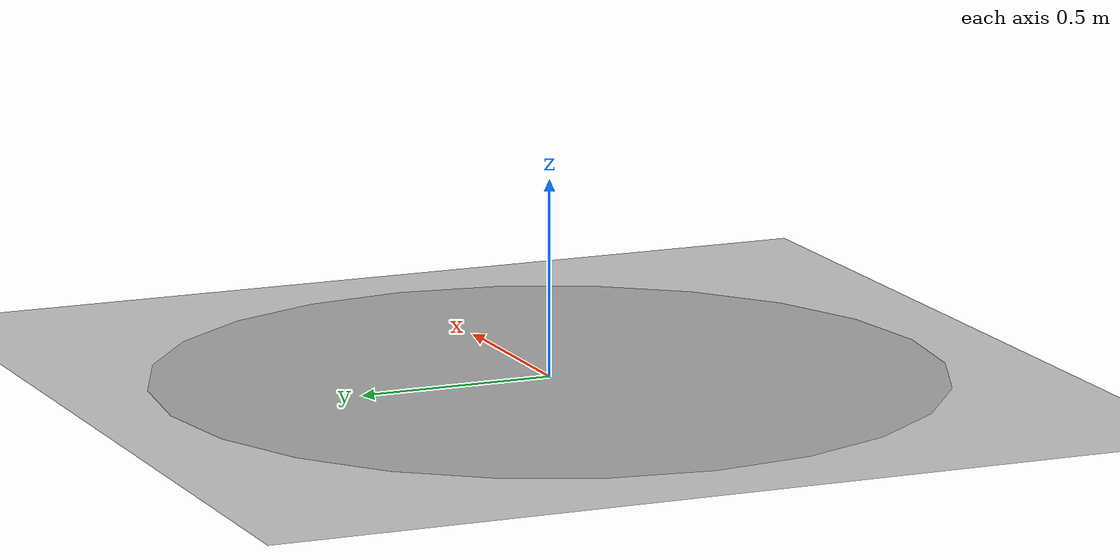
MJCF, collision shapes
<mujoco model="cf2">
  <option density="1.225" viscosity="1.8e-5"/>

  <compiler inertiafromgeom="false" meshdir="assets" autolimits="true" eulerseq="zyx"/>

  <default>
    <default class="cf2">
      <default class="visual">
        <geom group="2" type="mesh" contype="0" conaffinity="0"/>
      </default>
      <default class="collision">
        <geom group="3" type="mesh" contype="1" conaffinity="1"/>
      </default>
      <site group="5"/>
    </default>
  </default>

  <asset>
    <material name="polished_plastic" rgba="0.631 0.659 0.678 1"/>
    <material name="polished_gold" rgba="0.969 0.878 0.6 1"/>
    <material name="medium_gloss_plastic" rgba="0.109 0.184 0.0 1"/>
    <material name="propeller_plastic" rgba="0.792 0.820 0.933 1"/>
    <material name="white" rgba="1 1 1 1"/>
    <material name="body_frame_plastic" rgba="0.102 0.102 0.102 1"/>
    <material name="burnished_chrome" rgba="0.898 0.898 0.898 1"/>

    <mesh file="cf2_0.obj"/>
    <mesh file="cf2_1.obj"/>
    <mesh file="cf2_2.obj"/>
    <mesh file="cf2_3.obj"/>
    <mesh file="cf2_4.obj"/>
    <mesh file="cf2_5.obj"/>
    <mesh file="cf2_6.obj"/>
    <mesh file="cf2_collision_0.obj"/>
    <mesh file="cf2_collision_1.obj"/>
    <mesh file="cf2_collision_2.obj"/>
    <mesh file="cf2_collision_3.obj"/>
    <mesh file="cf2_collision_4.obj"/>
    <mesh file="cf2_collision_5.obj"/>
    <mesh file="cf2_collision_6.obj"/>
    <mesh file="cf2_collision_7.obj"/>
    <mesh file="cf2_collision_8.obj"/>
    <mesh file="cf2_collision_9.obj"/>
    <mesh file="cf2_collision_10.obj"/>
    <mesh file="cf2_collision_11.obj"/>
    <mesh file="cf2_collision_12.obj"/>
    <mesh file="cf2_collision_13.obj"/>
    <mesh file="cf2_collision_14.obj"/>
    <mesh file="cf2_collision_15.obj"/>
    <mesh file="cf2_collision_16.obj"/>
    <mesh file="cf2_collision_17.obj"/>
    <mesh file="cf2_collision_18.obj"/>
    <mesh file="cf2_collision_19.obj"/>
    <mesh file="cf2_collision_20.obj"/>
    <mesh file="cf2_collision_21.obj"/>
    <mesh file="cf2_collision_22.obj"/>
    <mesh file="cf2_collision_23.obj"/>
    <mesh file="cf2_collision_24.obj"/>
    <mesh file="cf2_collision_25.obj"/>
    <mesh file="cf2_collision_26.obj"/>
    <mesh file="cf2_collision_27.obj"/>
    <mesh file="cf2_collision_28.obj"/>
    <mesh file="cf2_collision_29.obj"/>
    <mesh file="cf2_collision_30.obj"/>
    <mesh file="cf2_collision_31.obj"/>
  </asset>

  <worldbody>
    <!-- table -->
    <geom name="floor" type="plane" pos="0.0 0.0 0.0" size="10 10 0.1"  rgba="0.79 0.79 0.79 1.0" contype="0" conaffinity="0" condim="3"/>
    <!-- crazyflie -->
    <body name="cf2" pos="0 0 0.1" childclass="cf2">
      <freejoint/>
      <inertial pos="0 0 0" mass="0.027" diaginertia="2.3951e-5 2.3951e-5 3.2347e-5"/>
      <geom type="sphere" name="mocap" rgba="1 0 0 1" pos="0 0 0" size="0.005" contype="0" conaffinity= "0"/>
      <body name="cf_mocap" pos="0.0 0.0 0.013" >
        <geom mesh="cf2_0" material="propeller_plastic" class="visual"/>
        <geom mesh="cf2_1" material="medium_gloss_plastic" class="visual"/>
        <geom mesh="cf2_2" material="polished_gold" class="visual"/>
        <geom mesh="cf2_3" material="polished_plastic" class="visual"/>
        <geom mesh="cf2_4" material="burnished_chrome" class="visual"/>
        <geom mesh="cf2_5" material="body_frame_plastic" class="visual"/>
        <geom mesh="cf2_6" material="white" class="visual"/>
        <inertial euler="0 0 0" pos="0 0 0" mass="1e-09" diaginertia="1e-09 1e-09 1e-09"/>
        <joint name="cf_mocap" type="slide" axis="1 0 0" range="-0.01 0.01"/>
        <geom type="sphere" name="" rgba="0 0 1 1" pos="0 0 0." size="0.005" contype="0" conaffinity="0"/>
      </body>
    </body>
    <!-- circle -->
    <body name="circle" pos="0.0 0.0 0.0" >
      <camera name="track" pos="-1 0 .5" xyaxes="0 -1 0 1 0 2" mode="trackcom"/>
      <inertial euler="0 0 0" pos="0 0 0" mass="1e-06" diaginertia="1e-06 1e-06 1e-06"/>
      <joint name="circle_x" type="slide" axis="1 0 0" range="-10 10"/>
      <joint name="circle_y" type="slide" axis="0 1 0" range="-10 10"/>
      <joint name="circle_z" type="slide" axis="0 0 1" range="-10 10"/>
      <geom name="circle_cylinder" type="cylinder" rgba="0.2 0.2 0.2 0.1" pos="0 0 0" size="1.00 0.001" contype="0" conaffinity="0" condim="3"/>
    </body>
  </worldbody>

  <actuator>
    <position joint="circle_x" kp="20" ctrllimited="true" ctrlrange="-10 10"/>
  </actuator>

</mujoco>
